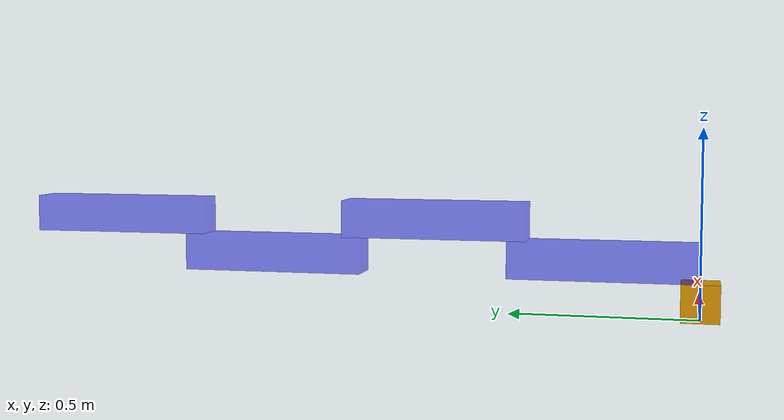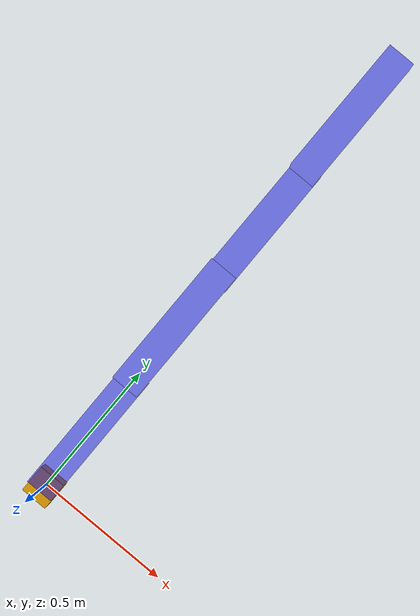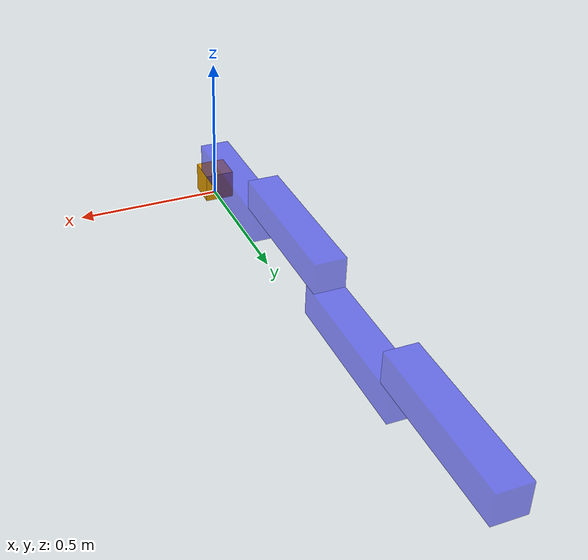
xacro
<robot name="my_robot">

  <!-- the model -->
  <link name="base_link">
    <inertial>
      <mass value="1000" />
      <origin xyz="0 0 0.05" />
      <inertia ixx="50.0" ixy="0.0" ixz="0.0"
        iyy="50.0" iyz="0.0"
        izz="50.0" />
    </inertial>
    <visual>
      <origin rpy="0 0 0" xyz="0 0 0.05"/>
      <geometry>
        <box size="0.1 0.1 0.1" />
      </geometry>
    </visual>
    <collision>
      <origin rpy="0 0 0" xyz="0 0 0.05"/>
      <geometry>
        <box size="0.1 0.1 0.1" />
      </geometry>
    </collision>
  </link>

  <joint name="joint1" type="continuous">
    <origin rpy="0 1.57079632679 0" xyz="0 0 0.1"/>
    <parent link="base_link"/>
    <child link="arm_link1"/>
  </joint>

  <link name="arm_link1">
    <inertial>
        <origin rpy="0 0 0" xyz="-0.05 0.25 0"/>
        <mass value="0.1"/>
        <inertia ixx="1.67E-03" ixy="0" ixz="0" iyy="0.02166" iyz="0" izz="0.02166"/>
    </inertial>
    <visual>
        <origin rpy="0 0 0" xyz="-0.05 0.25 0"/>
        <geometry>
          <box size="0.1 0.5 0.1" /> <!-- does not need to match collision -->
        </geometry>
        <material name="">
            <color rgba="0 0 1 0.5"/>
        </material>
    </visual>
    <collision>
        <origin rpy="0 0 0" xyz="-0.05 0.25 0"/>
        <geometry>
            <box size="0.1 0.5 0.1" />
        </geometry>
    </collision>
  </link>

  <joint name="joint2" type="continuous">
    <origin rpy="0 0 0" xyz="-0.1 0.45 0"/>
    <parent link="arm_link1"/>
    <child link="arm_link2"/>
  </joint>

  <link name="arm_link2">
    <inertial>
        <origin rpy="0 0 0" xyz="-0.05 0.25 0"/>
        <mass value="0.1"/>
        <inertia ixx="1.67E-03" ixy="0" ixz="0" iyy="0.02166" iyz="0" izz="0.02166"/>
    </inertial>
    <visual>
        <origin rpy="0 0 0" xyz="-0.05 0.25 0"/>
        <geometry>
          <box size="0.1 0.5 0.1" /> <!-- does not need to match collision -->
        </geometry>
        <material name="">
            <color rgba="0 0 1 0.5"/>
        </material>
    </visual>
    <collision>
        <origin rpy="0 0 0" xyz="-0.05 0.25 0"/>
        <geometry>
            <box size="0.1 0.5 0.1" />
        </geometry>
    </collision>
  </link>

  <joint name="joint3" type="continuous">
    <origin rpy="0 0 0" xyz="0.1 0.45 0"/>
    <parent link="arm_link2"/>
    <child link="arm_link3"/>
  </joint>

  <link name="arm_link3">
    <inertial>
        <origin rpy="0 0 0" xyz="-0.05 0.25 0"/>
        <mass value="0.1"/>
        <inertia ixx="1.67E-03" ixy="0" ixz="0" iyy="0.02166" iyz="0" izz="0.02166"/>
    </inertial>
    <visual>
        <origin rpy="0 0 0" xyz="-0.05 0.25 0"/>
        <geometry>
          <box size="0.1 0.5 0.1" /> <!-- does not need to match collision -->
        </geometry>
        <material name="">
            <color rgba="0 0 1 0.5"/>
        </material>
    </visual>
    <collision>
        <origin rpy="0 0 0" xyz="-0.05 0.25 0"/>
        <geometry>
            <box size="0.1 0.5 0.1" />
        </geometry>
    </collision>
  </link>

  <joint name="joint4" type="continuous">
    <origin rpy="0 0 0" xyz="-0.1 0.45 0"/>
    <parent link="arm_link3"/>
    <child link="arm_link4"/>
  </joint>

  <link name="arm_link4">
    <inertial>
        <origin rpy="0 0 0" xyz="-0.05 0.25 0"/>
        <mass value="0.1"/>
        <inertia ixx="1.67E-03" ixy="0" ixz="0" iyy="0.02166" iyz="0" izz="0.02166"/>
    </inertial>
    <visual>
        <origin rpy="0 0 0" xyz="-0.05 0.25 0"/>
        <geometry>
          <box size="0.1 0.5 0.1" /> <!-- does not need to match collision -->
        </geometry>
        <material name="">
            <color rgba="0 0 1 0.5"/>
        </material>
    </visual>
    <collision>
        <origin rpy="0 0 0" xyz="-0.05 0.25 0"/>
        <geometry>
            <box size="0.1 0.5 0.1" />
        </geometry>
    </collision>
  </link>

  <!-- ROS Control plugin for Gazebo -->
  <gazebo>
    <plugin name="gazebo_ros_control" filename="libgazebo_ros_control.so">
      <robotNamespace>/my_robot</robotNamespace>
      <legacyModeNS>false</legacyModeNS>
    </plugin>
    <plugin name="object_controller" filename="libgazebo_ros_planar_move.so">
      <commandTopic>cmd_vel</commandTopic>
      <odometryTopic>odom</odometryTopic>
      <odometryFrame>odom</odometryFrame>
      <odometryRate>20.0</odometryRate>
      <robotBaseFrame>base_footprint</robotBaseFrame>
    </plugin>
  </gazebo>

  <!-- transmission -->
  <transmission name="trans_joint1">
      <type>transmission_interface/SimpleTransmission</type>
      <joint name="joint1">
          <hardwareInterface>hardware_interface/PositionJointInterface</hardwareInterface>
      </joint>
      <actuator name="joint1_motor">
          <hardwareInterface>hardware_interface/PositionJointInterface</hardwareInterface>
          <mechanicalReduction>1</mechanicalReduction>
      </actuator>
  </transmission>
  <transmission name="trans_joint2">
      <type>transmission_interface/SimpleTransmission</type>
      <joint name="joint2">
          <hardwareInterface>hardware_interface/PositionJointInterface</hardwareInterface>
      </joint>
      <actuator name="joint2_motor">
          <hardwareInterface>hardware_interface/PositionJointInterface</hardwareInterface>
          <mechanicalReduction>1</mechanicalReduction>
      </actuator>
  </transmission>

</robot>
